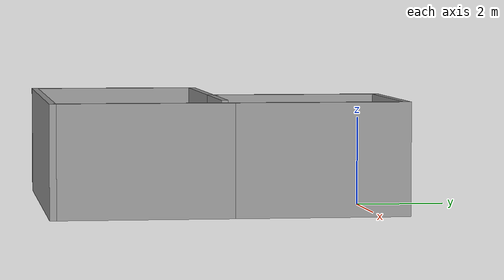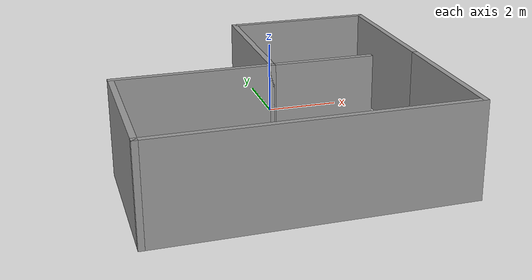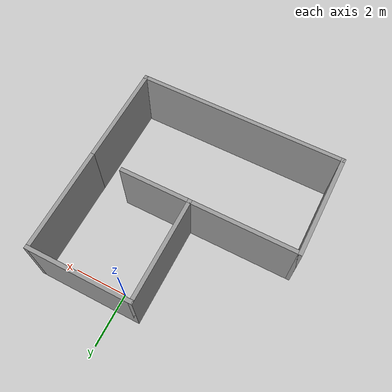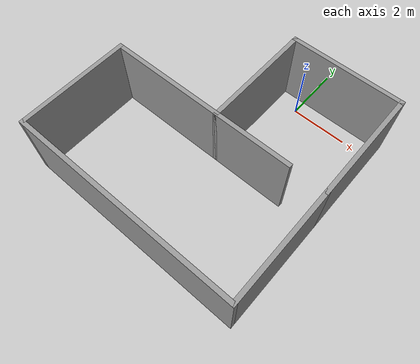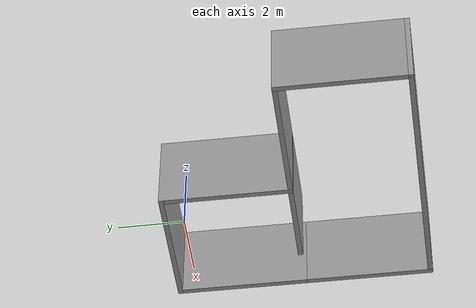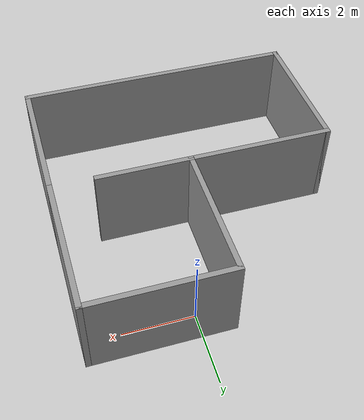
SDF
<?xml version='1.0'?>
<sdf version='1.7'>
  <model name='simple_house_small'>
    <pose>-0.945 -3.28 0 0 -0 0</pose>
    <link name='Wall_0'>
      <collision name='Wall_0_Collision'>
        <geometry>
          <box>
            <size>4 0.15 2.5</size>
          </box>
        </geometry>
        <pose>0 0 1.25 0 -0 0</pose>
      </collision>
      <visual name='Wall_0_Visual'>
        <pose>0 0 1.25 0 -0 0</pose>
        <geometry>
          <box>
            <size>4 0.15 2.5</size>
          </box>
        </geometry>
        <material>
          <script>
            <uri>file://media/materials/scripts/gazebo.material</uri>
            <name>Gazebo/Grey</name>
          </script>
          <ambient>1 1 1 1</ambient>
        </material>
        <meta>
          <layer>0</layer>
        </meta>
      </visual>
      <pose>0.075 1.925 0 0 -0 1.5708</pose>
    </link>
    <link name='Wall_1'>
      <collision name='Wall_1_Collision'>
        <geometry>
          <box>
            <size>4 0.15 2.5</size>
          </box>
        </geometry>
        <pose>0 0 1.25 0 -0 0</pose>
      </collision>
      <visual name='Wall_1_Visual'>
        <pose>0 0 1.25 0 -0 0</pose>
        <geometry>
          <box>
            <size>4 0.15 2.5</size>
          </box>
        </geometry>
        <material>
          <script>
            <uri>file://media/materials/scripts/gazebo.material</uri>
            <name>Gazebo/Grey</name>
          </script>
          <ambient>1 1 1 1</ambient>
        </material>
        <meta>
          <layer>0</layer>
        </meta>
      </visual>
      <pose>2 3.85 0 0 -0 0</pose>
    </link>
    <link name='Wall_2'>
      <collision name='Wall_2_Collision'>
        <geometry>
          <box>
            <size>4 0.15 2.5</size>
          </box>
        </geometry>
        <pose>0 0 1.25 0 -0 0</pose>
      </collision>
      <visual name='Wall_2_Visual'>
        <pose>0 0 1.25 0 -0 0</pose>
        <geometry>
          <box>
            <size>4 0.15 2.5</size>
          </box>
        </geometry>
        <material>
          <script>
            <uri>file://media/materials/scripts/gazebo.material</uri>
            <name>Gazebo/Grey</name>
          </script>
          <ambient>1 1 1 1</ambient>
        </material>
        <meta>
          <layer>0</layer>
        </meta>
      </visual>
      <pose>3.925 1.925 0 0 -0 -1.5708</pose>
    </link>
    <link name='Wall_3'>
      <collision name='Wall_3_Collision'>
        <geometry>
          <box>
            <size>4 0.15 2.5</size>
          </box>
        </geometry>
        <pose>0 0 1.25 0 -0 0</pose>
      </collision>
      <visual name='Wall_3_Visual'>
        <pose>0 0 1.25 0 -0 0</pose>
        <geometry>
          <box>
            <size>4 0.15 2.5</size>
          </box>
        </geometry>
        <material>
          <script>
            <uri>file://media/materials/scripts/gazebo.material</uri>
            <name>Gazebo/Grey</name>
          </script>
          <ambient>1 1 1 1</ambient>
        </material>
        <meta>
          <layer>0</layer>
        </meta>
      </visual>
      <pose>3.925 -1.925 0 0 -0 -1.5708</pose>
    </link>
    <link name='Wall_4'>
      <collision name='Wall_4_Collision'>
        <geometry>
          <box>
            <size>8 0.15 2.5</size>
          </box>
        </geometry>
        <pose>0 0 1.25 0 -0 0</pose>
      </collision>
      <visual name='Wall_4_Visual'>
        <pose>0 0 1.25 0 -0 0</pose>
        <geometry>
          <box>
            <size>8 0.15 2.5</size>
          </box>
        </geometry>
        <material>
          <script>
            <uri>file://media/materials/scripts/gazebo.material</uri>
            <name>Gazebo/Grey</name>
          </script>
          <ambient>1 1 1 1</ambient>
        </material>
        <meta>
          <layer>0</layer>
        </meta>
      </visual>
      <pose>-0 -3.85 0 0 -0 3.14159</pose>
    </link>
    <link name='Wall_5'>
      <collision name='Wall_5_Collision'>
        <geometry>
          <box>
            <size>4 0.15 2.5</size>
          </box>
        </geometry>
        <pose>0 0 1.25 0 -0 0</pose>
      </collision>
      <visual name='Wall_5_Visual'>
        <pose>0 0 1.25 0 -0 0</pose>
        <geometry>
          <box>
            <size>4 0.15 2.5</size>
          </box>
        </geometry>
        <material>
          <script>
            <uri>file://media/materials/scripts/gazebo.material</uri>
            <name>Gazebo/Grey</name>
          </script>
          <ambient>1 1 1 1</ambient>
        </material>
        <meta>
          <layer>0</layer>
        </meta>
      </visual>
      <pose>-3.925 -1.925 0 0 -0 1.5708</pose>
    </link>
    <link name='Wall_6'>
      <collision name='Wall_6_Collision'>
        <geometry>
          <box>
            <size>4.15 0.15 2.5</size>
          </box>
        </geometry>
        <pose>0 0 1.25 0 -0 0</pose>
      </collision>
      <visual name='Wall_6_Visual'>
        <pose>0 0 1.25 0 -0 0</pose>
        <geometry>
          <box>
            <size>4.15 0.15 2.5</size>
          </box>
        </geometry>
        <material>
          <script>
            <uri>file://media/materials/scripts/gazebo.material</uri>
            <name>Gazebo/Grey</name>
          </script>
          <ambient>1 1 1 1</ambient>
        </material>
        <meta>
          <layer>0</layer>
        </meta>
      </visual>
      <pose>-1.925 -0 0 0 -0 0</pose>
    </link>
    <link name='Wall_7'>
      <collision name='Wall_7_Collision'>
        <geometry>
          <box>
            <size>2.75 0.15 2.5</size>
          </box>
        </geometry>
        <pose>0 0 1.25 0 -0 0</pose>
      </collision>
      <visual name='Wall_7_Visual'>
        <pose>0 0 1.25 0 -0 0</pose>
        <geometry>
          <box>
            <size>2.75 0.15 2.5</size>
          </box>
        </geometry>
        <material>
          <script>
            <uri>file://media/materials/scripts/gazebo.material</uri>
            <name>Gazebo/Grey</name>
          </script>
          <ambient>1 1 1 1</ambient>
        </material>
        <meta>
          <layer>0</layer>
        </meta>
      </visual>
      <pose>1.375 -0 0 0 -0 0</pose>
    </link>
    <static>1</static>
  </model>
</sdf>
